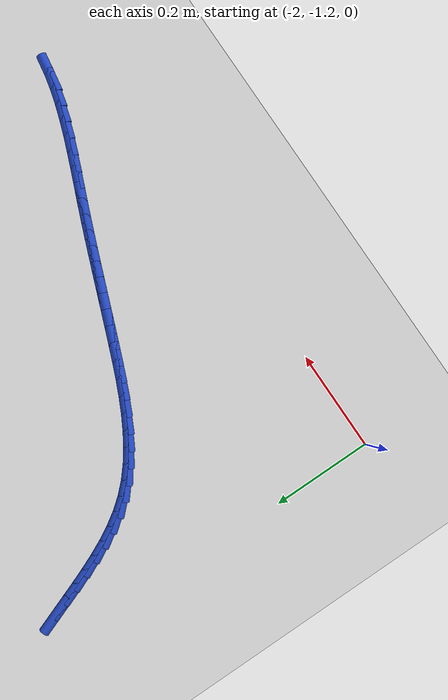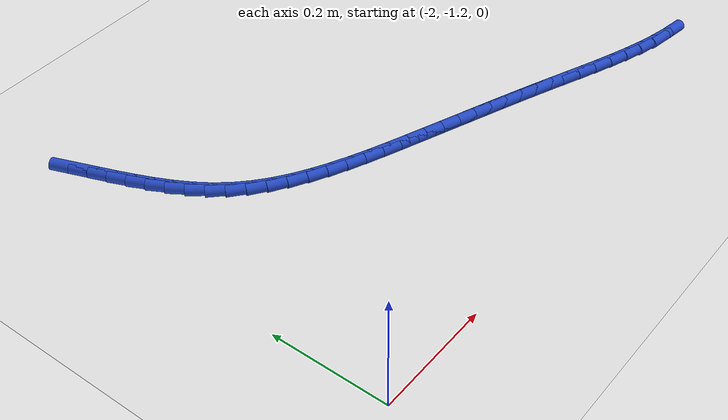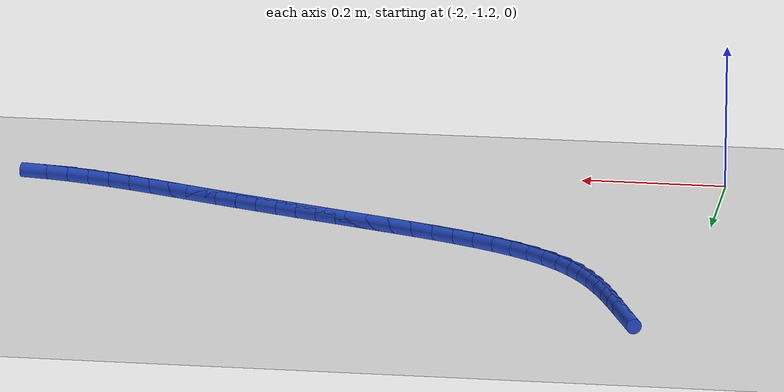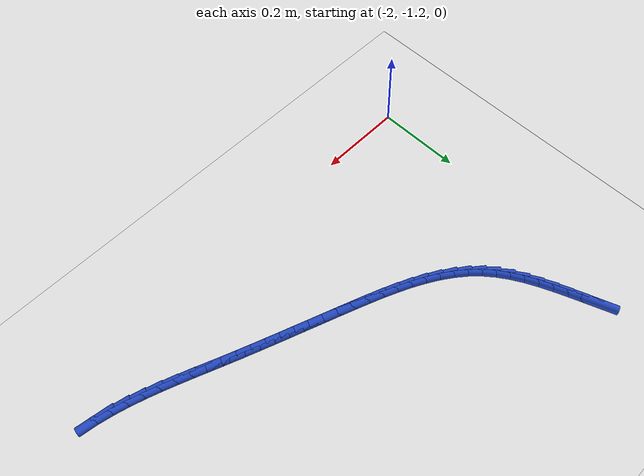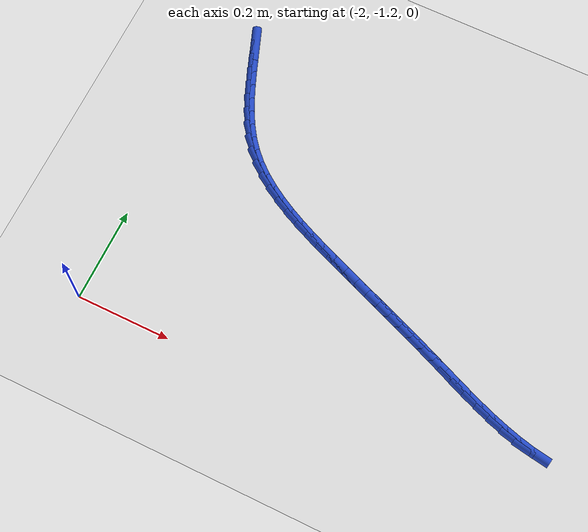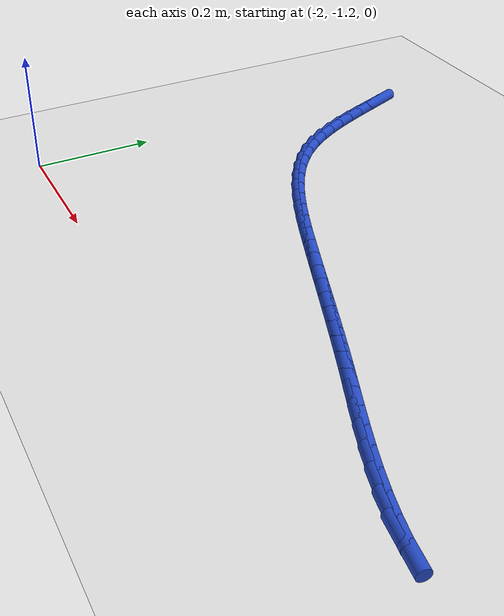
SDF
<sdf version="1.6">
 <world name="default">
  <model name="ground_plane">
   <static>1</static>
   <link name="link">
    <collision name="collision">
     <geometry><plane><normal>0 0 1</normal><size>100 100</size></plane></geometry>
     <surface><friction><ode><mu>100</mu><mu2>50</mu2></ode></friction></surface>
    </collision>
    <visual name="visual">
     <cast_shadows>0</cast_shadows>
     <geometry><plane><normal>0 0 1</normal><size>100 100</size></plane></geometry>
     <material>
      <script><uri>file://media/materials/scripts/gazebo.material</uri><name>Gazebo/WhiteGlow</name></script>
     </material>
    </visual>
   </link>
  </model>
  <model name="line">
   <link name="link_122">
    <pose>-1.9363775361465407 -0.541836652911299 0.01 0 1.57 -1.2096303302250955</pose>
    <collision name="collision">
     <geometry><cylinder><radius>0.01</radius><length>0.08</length></cylinder></geometry>
    </collision>
    <visual name="visual">
     <material>
      <script><name>Gazebo/Blue</name><uri>file://media/materials/scripts/gazebo.material</uri></script>
     </material>
     <geometry><cylinder><radius>0.01</radius><length>0.08</length></cylinder></geometry>
    </visual>
   </link>
   <link name="link_123">
    <pose>-1.9248553724408204 -0.5723399818897371 0.01 0 1.57 -1.207356428297363</pose>
    <collision name="collision">
     <geometry><cylinder><radius>0.01</radius><length>0.08</length></cylinder></geometry>
    </collision>
    <visual name="visual">
     <material>
      <script><name>Gazebo/Blue</name><uri>file://media/materials/scripts/gazebo.material</uri></script>
     </material>
     <geometry><cylinder><radius>0.01</radius><length>0.08</length></cylinder></geometry>
    </visual>
   </link>
   <link name="link_124">
    <pose>-1.913334210981631 -0.6026321054805607 0.01 0 1.57 -1.1918049288754198</pose>
    <collision name="collision">
     <geometry><cylinder><radius>0.01</radius><length>0.08</length></cylinder></geometry>
    </collision>
    <visual name="visual">
     <material>
      <script><name>Gazebo/Blue</name><uri>file://media/materials/scripts/gazebo.material</uri></script>
     </material>
     <geometry><cylinder><radius>0.01</radius><length>0.08</length></cylinder></geometry>
    </visual>
   </link>
   <link name="link_125">
    <pose>-1.901458792376829 -0.6324515828241237 0.01 0 1.57 -1.1624309001410174</pose>
    <collision name="collision">
     <geometry><cylinder><radius>0.01</radius><length>0.08</length></cylinder></geometry>
    </collision>
    <visual name="visual">
     <material>
      <script><name>Gazebo/Blue</name><uri>file://media/materials/scripts/gazebo.material</uri></script>
     </material>
     <geometry><cylinder><radius>0.01</radius><length>0.08</length></cylinder></geometry>
    </visual>
   </link>
   <link name="link_126">
    <pose>-1.8888738572342736 -0.6615369730607779 0.01 0 1.57 -1.1184678178322864</pose>
    <collision name="collision">
     <geometry><cylinder><radius>0.01</radius><length>0.08</length></cylinder></geometry>
    </collision>
    <visual name="visual">
     <material>
      <script><name>Gazebo/Blue</name><uri>file://media/materials/scripts/gazebo.material</uri></script>
     </material>
     <geometry><cylinder><radius>0.01</radius><length>0.08</length></cylinder></geometry>
    </visual>
   </link>
   <link name="link_127">
    <pose>-1.8752241461618218 -0.6896268353308769 0.01 0 1.57 -1.0590796621761351</pose>
    <collision name="collision">
     <geometry><cylinder><radius>0.01</radius><length>0.08</length></cylinder></geometry>
    </collision>
    <visual name="visual">
     <material>
      <script><name>Gazebo/Blue</name><uri>file://media/materials/scripts/gazebo.material</uri></script>
     </material>
     <geometry><cylinder><radius>0.01</radius><length>0.08</length></cylinder></geometry>
    </visual>
   </link>
   <link name="link_128">
    <pose>-1.8601543997673313 -0.7164597287747742 0.01 0 1.57 -0.9836497037505121</pose>
    <collision name="collision">
     <geometry><cylinder><radius>0.01</radius><length>0.08</length></cylinder></geometry>
    </collision>
    <visual name="visual">
     <material>
      <script><name>Gazebo/Blue</name><uri>file://media/materials/scripts/gazebo.material</uri></script>
     </material>
     <geometry><cylinder><radius>0.01</radius><length>0.08</length></cylinder></geometry>
    </visual>
   </link>
   <link name="link_129">
    <pose>-1.8433093586586602 -0.7417742125328227 0.01 0 1.57 -0.8922354825230495</pose>
    <collision name="collision">
     <geometry><cylinder><radius>0.01</radius><length>0.08</length></cylinder></geometry>
    </collision>
    <visual name="visual">
     <material>
      <script><name>Gazebo/Blue</name><uri>file://media/materials/scripts/gazebo.material</uri></script>
     </material>
     <geometry><cylinder><radius>0.01</radius><length>0.08</length></cylinder></geometry>
    </visual>
   </link>
   <link name="link_130">
    <pose>-1.8243337634436658 -0.7653088457453758 0.01 0 1.57 -0.7900405530162019</pose>
    <collision name="collision">
     <geometry><cylinder><radius>0.01</radius><length>0.08</length></cylinder></geometry>
    </collision>
    <visual name="visual">
     <material>
      <script><name>Gazebo/Blue</name><uri>file://media/materials/scripts/gazebo.material</uri></script>
     </material>
     <geometry><cylinder><radius>0.01</radius><length>0.08</length></cylinder></geometry>
    </visual>
   </link>
   <link name="link_131">
    <pose>-1.8029722361712766 -0.7868696365732234 0.01 0 1.57 -0.6962480842655665</pose>
    <collision name="collision">
     <geometry><cylinder><radius>0.01</radius><length>0.08</length></cylinder></geometry>
    </collision>
    <visual name="visual">
     <material>
      <script><name>Gazebo/Blue</name><uri>file://media/materials/scripts/gazebo.material</uri></script>
     </material>
     <geometry><cylinder><radius>0.01</radius><length>0.08</length></cylinder></geometry>
    </visual>
   </link>
   <link name="link_132">
    <pose>-1.779413349184283 -0.8065623887359993 0.01 0 1.57 -0.6160530925633665</pose>
    <collision name="collision">
     <geometry><cylinder><radius>0.01</radius><length>0.08</length></cylinder></geometry>
    </collision>
    <visual name="visual">
     <material>
      <script><name>Gazebo/Blue</name><uri>file://media/materials/scripts/gazebo.material</uri></script>
     </material>
     <geometry><cylinder><radius>0.01</radius><length>0.08</length></cylinder></geometry>
    </visual>
   </link>
   <link name="link_133">
    <pose>-1.7539689763052304 -0.8245761703109444 0.01 0 1.57 -0.5488968129893098</pose>
    <collision name="collision">
     <geometry><cylinder><radius>0.01</radius><length>0.08</length></cylinder></geometry>
    </collision>
    <visual name="visual">
     <material>
      <script><name>Gazebo/Blue</name><uri>file://media/materials/scripts/gazebo.material</uri></script>
     </material>
     <geometry><cylinder><radius>0.01</radius><length>0.08</length></cylinder></geometry>
    </visual>
   </link>
   <link name="link_134">
    <pose>-1.7269509961729916 -0.8411000526277238 0.01 0 1.57 -0.4938185210210084</pose>
    <collision name="collision">
     <geometry><cylinder><radius>0.01</radius><length>0.08</length></cylinder></geometry>
    </collision>
    <visual name="visual">
     <material>
      <script><name>Gazebo/Blue</name><uri>file://media/materials/scripts/gazebo.material</uri></script>
     </material>
     <geometry><cylinder><radius>0.01</radius><length>0.08</length></cylinder></geometry>
    </visual>
   </link>
   <link name="link_135">
    <pose>-1.6986712874264376 -0.8563231070160009 0.01 0 1.57 -0.4497728292797647</pose>
    <collision name="collision">
     <geometry><cylinder><radius>0.01</radius><length>0.08</length></cylinder></geometry>
    </collision>
    <visual name="visual">
     <material>
      <script><name>Gazebo/Blue</name><uri>file://media/materials/scripts/gazebo.material</uri></script>
     </material>
     <geometry><cylinder><radius>0.01</radius><length>0.08</length></cylinder></geometry>
    </visual>
   </link>
   <link name="link_136">
    <pose>-1.669441728704441 -0.8704344048054398 0.01 0 1.57 -0.4158216652869775</pose>
    <collision name="collision">
     <geometry><cylinder><radius>0.01</radius><length>0.08</length></cylinder></geometry>
    </collision>
    <visual name="visual">
     <material>
      <script><name>Gazebo/Blue</name><uri>file://media/materials/scripts/gazebo.material</uri></script>
     </material>
     <geometry><cylinder><radius>0.01</radius><length>0.08</length></cylinder></geometry>
    </visual>
   </link>
   <link name="link_137">
    <pose>-1.6395741986458732 -0.8836230173257038 0.01 0 1.57 -0.39123923576474084</pose>
    <collision name="collision">
     <geometry><cylinder><radius>0.01</radius><length>0.08</length></cylinder></geometry>
    </collision>
    <visual name="visual">
     <material>
      <script><name>Gazebo/Blue</name><uri>file://media/materials/scripts/gazebo.material</uri></script>
     </material>
     <geometry><cylinder><radius>0.01</radius><length>0.08</length></cylinder></geometry>
    </visual>
   </link>
   <link name="link_138">
    <pose>-1.609380575889607 -0.8960780159064579 0.01 0 1.57 -0.37556879112870845</pose>
    <collision name="collision">
     <geometry><cylinder><radius>0.01</radius><length>0.08</length></cylinder></geometry>
    </collision>
    <visual name="visual">
     <material>
      <script><name>Gazebo/Blue</name><uri>file://media/materials/scripts/gazebo.material</uri></script>
     </material>
     <geometry><cylinder><radius>0.01</radius><length>0.08</length></cylinder></geometry>
    </visual>
   </link>
   <link name="link_139">
    <pose>-1.579172739074514 -0.907988471877365 0.01 0 1.57 -0.36838930921874236</pose>
    <collision name="collision">
     <geometry><cylinder><radius>0.01</radius><length>0.08</length></cylinder></geometry>
    </collision>
    <visual name="visual">
     <material>
      <script><name>Gazebo/Blue</name><uri>file://media/materials/scripts/gazebo.material</uri></script>
     </material>
     <geometry><cylinder><radius>0.01</radius><length>0.08</length></cylinder></geometry>
    </visual>
   </link>
   <link name="link_140">
    <pose>-1.5492481978835453 -0.9195396834433465 0.01 0 1.57 -0.365653641722609</pose>
    <collision name="collision">
     <geometry><cylinder><radius>0.01</radius><length>0.08</length></cylinder></geometry>
    </collision>
    <visual name="visual">
     <material>
      <script><name>Gazebo/Blue</name><uri>file://media/materials/scripts/gazebo.material</uri></script>
     </material>
     <geometry><cylinder><radius>0.01</radius><length>0.08</length></cylinder></geometry>
    </visual>
   </link>
   <link name="link_141">
    <pose>-1.5196838593706707 -0.9308590210627147 0.01 0 1.57 -0.3642050764191655</pose>
    <collision name="collision">
     <geometry><cylinder><radius>0.01</radius><length>0.08</length></cylinder></geometry>
    </collision>
    <visual name="visual">
     <material>
      <script><name>Gazebo/Blue</name><uri>file://media/materials/scripts/gazebo.material</uri></script>
     </material>
     <geometry><cylinder><radius>0.01</radius><length>0.08</length></cylinder></geometry>
    </visual>
   </link>
   <link name="link_142">
    <pose>-1.4903838995320522 -0.9420284979784367 0.01 0 1.57 -0.3640083756560979</pose>
    <collision name="collision">
     <geometry><cylinder><radius>0.01</radius><length>0.08</length></cylinder></geometry>
    </collision>
    <visual name="visual">
     <material>
      <script><name>Gazebo/Blue</name><uri>file://media/materials/scripts/gazebo.material</uri></script>
     </material>
     <geometry><cylinder><radius>0.01</radius><length>0.08</length></cylinder></geometry>
    </visual>
   </link>
   <link name="link_143">
    <pose>-1.4612478796880106 -0.9531289156719787 0.01 0 1.57 -0.36508731811184164</pose>
    <collision name="collision">
     <geometry><cylinder><radius>0.01</radius><length>0.08</length></cylinder></geometry>
    </collision>
    <visual name="visual">
     <material>
      <script><name>Gazebo/Blue</name><uri>file://media/materials/scripts/gazebo.material</uri></script>
     </material>
     <geometry><cylinder><radius>0.01</radius><length>0.08</length></cylinder></geometry>
    </visual>
   </link>
   <link name="link_144">
    <pose>-1.4321753611588695 -0.9642410756248071 0.01 0 1.57 -0.3674359341199692</pose>
    <collision name="collision">
     <geometry><cylinder><radius>0.01</radius><length>0.08</length></cylinder></geometry>
    </collision>
    <visual name="visual">
     <material>
      <script><name>Gazebo/Blue</name><uri>file://media/materials/scripts/gazebo.material</uri></script>
     </material>
     <geometry><cylinder><radius>0.01</radius><length>0.08</length></cylinder></geometry>
    </visual>
   </link>
   <link name="link_145">
    <pose>-1.4030659052649486 -0.9754457793183889 0.01 0 1.57 -0.37101842670005625</pose>
    <collision name="collision">
     <geometry><cylinder><radius>0.01</radius><length>0.08</length></cylinder></geometry>
    </collision>
    <visual name="visual">
     <material>
      <script><name>Gazebo/Blue</name><uri>file://media/materials/scripts/gazebo.material</uri></script>
     </material>
     <geometry><cylinder><radius>0.01</radius><length>0.08</length></cylinder></geometry>
    </visual>
   </link>
   <link name="link_146">
    <pose>-1.3738190733265725 -0.9868238282341901 0.01 0 1.57 -0.3757707720133498</pose>
    <collision name="collision">
     <geometry><cylinder><radius>0.01</radius><length>0.08</length></cylinder></geometry>
    </collision>
    <visual name="visual">
     <material>
      <script><name>Gazebo/Blue</name><uri>file://media/materials/scripts/gazebo.material</uri></script>
     </material>
     <geometry><cylinder><radius>0.01</radius><length>0.08</length></cylinder></geometry>
    </visual>
   </link>
   <link name="link_147">
    <pose>-1.3443344266640616 -0.9984560238536769 0.01 0 1.57 -0.3816038642231252</pose>
    <collision name="collision">
     <geometry><cylinder><radius>0.01</radius><length>0.08</length></cylinder></geometry>
    </collision>
    <visual name="visual">
     <material>
      <script><name>Gazebo/Blue</name><uri>file://media/materials/scripts/gazebo.material</uri></script>
     </material>
     <geometry><cylinder><radius>0.01</radius><length>0.08</length></cylinder></geometry>
    </visual>
   </link>
   <link name="link_148">
    <pose>-1.3145115265977378 -1.0104231676583162 0.01 0 1.57 -0.388021246712709</pose>
    <collision name="collision">
     <geometry><cylinder><radius>0.01</radius><length>0.08</length></cylinder></geometry>
    </collision>
    <visual name="visual">
     <material>
      <script><name>Gazebo/Blue</name><uri>file://media/materials/scripts/gazebo.material</uri></script>
     </material>
     <geometry><cylinder><radius>0.01</radius><length>0.08</length></cylinder></geometry>
    </visual>
   </link>
   <link name="link_149">
    <pose>-1.2842578704328402 -1.0227891589096012 0.01 0 1.57 -0.38983968147767456</pose>
    <collision name="collision">
     <geometry><cylinder><radius>0.01</radius><length>0.08</length></cylinder></geometry>
    </collision>
    <visual name="visual">
     <material>
      <script><name>Gazebo/Blue</name><uri>file://media/materials/scripts/gazebo.material</uri></script>
     </material>
     <geometry><cylinder><radius>0.01</radius><length>0.08</length></cylinder></geometry>
    </visual>
   </link>
   <link name="link_150">
    <pose>-1.2535877084034905 -1.0353905323382373 0.01 0 1.57 -0.3836198042653682</pose>
    <collision name="collision">
     <geometry><cylinder><radius>0.01</radius><length>0.08</length></cylinder></geometry>
    </collision>
    <visual name="visual">
     <material>
      <script><name>Gazebo/Blue</name><uri>file://media/materials/scripts/gazebo.material</uri></script>
     </material>
     <geometry><cylinder><radius>0.01</radius><length>0.08</length></cylinder></geometry>
    </visual>
   </link>
   <link name="link_151">
    <pose>-1.2225917374431186 -1.0479010049602315 0.01 0 1.57 -0.36935985768034213</pose>
    <collision name="collision">
     <geometry><cylinder><radius>0.01</radius><length>0.08</length></cylinder></geometry>
    </collision>
    <visual name="visual">
     <material>
      <script><name>Gazebo/Blue</name><uri>file://media/materials/scripts/gazebo.material</uri></script>
     </material>
     <geometry><cylinder><radius>0.01</radius><length>0.08</length></cylinder></geometry>
    </visual>
   </link>
   <link name="link_152">
    <pose>-1.1913623165615406 -1.059990753867945 0.01 0 1.57 -0.34684795358124487</pose>
    <collision name="collision">
     <geometry><cylinder><radius>0.01</radius><length>0.08</length></cylinder></geometry>
    </collision>
    <visual name="visual">
     <material>
      <script><name>Gazebo/Blue</name><uri>file://media/materials/scripts/gazebo.material</uri></script>
     </material>
     <geometry><cylinder><radius>0.01</radius><length>0.08</length></cylinder></geometry>
    </visual>
   </link>
   <link name="link_153">
    <pose>-1.159991804768569 -1.0713299561537397 0.01 0 1.57 -0.3156009327502014</pose>
    <collision name="collision">
     <geometry><cylinder><radius>0.01</radius><length>0.08</length></cylinder></geometry>
    </collision>
    <visual name="visual">
     <material>
      <script><name>Gazebo/Blue</name><uri>file://media/materials/scripts/gazebo.material</uri></script>
     </material>
     <geometry><cylinder><radius>0.01</radius><length>0.08</length></cylinder></geometry>
    </visual>
   </link>
   <link name="link_154">
    <pose>-1.1285725610740183 -1.0815887889099773 0.01 0 1.57 -0.2748834899091118</pose>
    <collision name="collision">
     <geometry><cylinder><radius>0.01</radius><length>0.08</length></cylinder></geometry>
    </collision>
    <visual name="visual">
     <material>
      <script><name>Gazebo/Blue</name><uri>file://media/materials/scripts/gazebo.material</uri></script>
     </material>
     <geometry><cylinder><radius>0.01</radius><length>0.08</length></cylinder></geometry>
    </visual>
   </link>
   <link name="link_155">
    <pose>-1.097196944487703 -1.0904374292290202 0.01 0 1.57 -0.22374167185453933</pose>
    <collision name="collision">
     <geometry><cylinder><radius>0.01</radius><length>0.08</length></cylinder></geometry>
    </collision>
    <visual name="visual">
     <material>
      <script><name>Gazebo/Blue</name><uri>file://media/materials/scripts/gazebo.material</uri></script>
     </material>
     <geometry><cylinder><radius>0.01</radius><length>0.08</length></cylinder></geometry>
    </visual>
   </link>
   <link name="link_156">
    <pose>-1.0659573140194367 -1.0975460542032298 0.01 0 1.57 -0.16107471495034595</pose>
    <collision name="collision">
     <geometry><cylinder><radius>0.01</radius><length>0.08</length></cylinder></geometry>
    </collision>
    <visual name="visual">
     <material>
      <script><name>Gazebo/Blue</name><uri>file://media/materials/scripts/gazebo.material</uri></script>
     </material>
     <geometry><cylinder><radius>0.01</radius><length>0.08</length></cylinder></geometry>
    </visual>
   </link>
  </model>
 </world>
</sdf>
